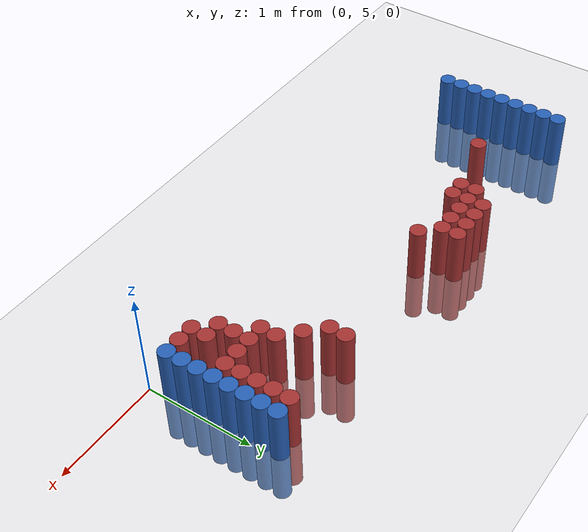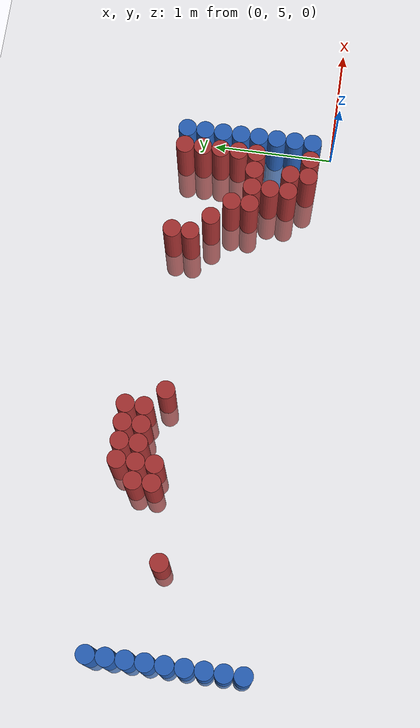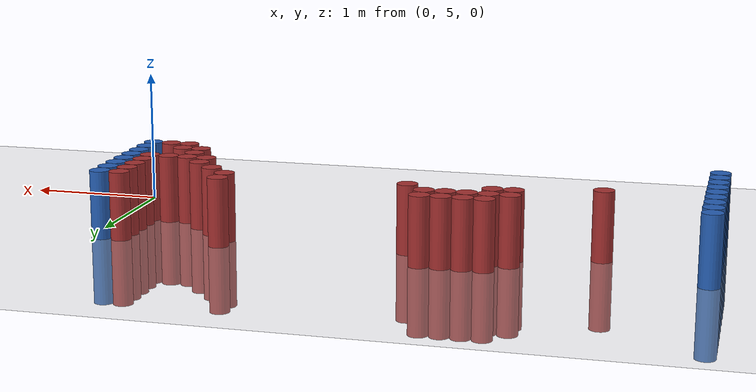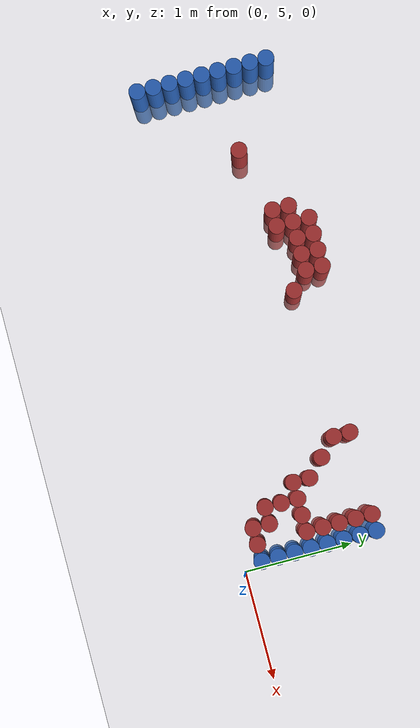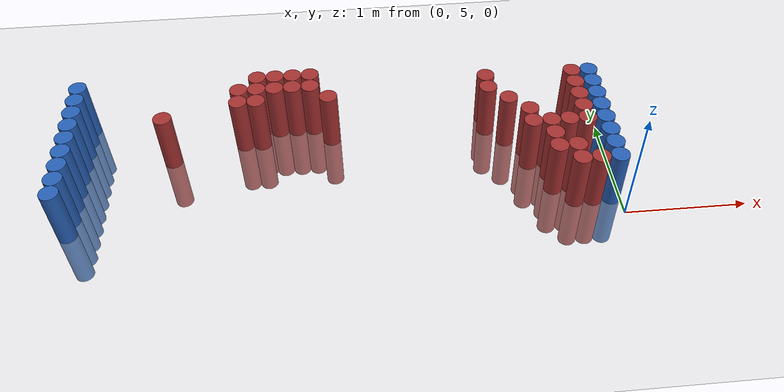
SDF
<sdf version="1.6">
 <world name="default">
  <model name="ground_plane">
   <static>1</static>
   <link name="link">
    <collision name="collision">
     <geometry><plane><normal>0 0 1</normal><size>100 100</size></plane></geometry>
     <surface><friction><ode><mu>100</mu><mu2>50</mu2></ode></friction></surface>
    </collision>
    <visual name="visual">
     <cast_shadows>0</cast_shadows>
     <geometry><plane><normal>0 0 1</normal><size>100 100</size></plane></geometry>
     <material>
      <script><uri>file://media/materials/scripts/gazebo.material</uri><name>Gazebo/Grey</name></script>
     </material>
    </visual>
   </link>
  </model>
  <model name="unit_cylinder_96">
   <static>1</static>
   <pose>-4.425000 5.175000 0.000000 0.000000 0.000000 0.000000</pose>
   <link name="link">
    <inertial>
     <mass>1</mass>
     <inertia><ixx>0.145833</ixx><ixy>0</ixy><ixz>0</ixz><iyy>0.145833</iyy><iyz>0</iyz><izz>0.125</izz></inertia>
    </inertial>
    <collision name="collision">
     <geometry><cylinder><radius>0.075000</radius><length>1</length></cylinder></geometry>
    </collision>
    <visual name="visual">
     <geometry><cylinder><radius>0.075000</radius><length>1</length></cylinder></geometry>
     <material>
      <ambient>0.152000 0.379000 0.720000 1</ambient>
      <diffuse>0.152000 0.379000 0.720000 1</diffuse>
     </material>
     <material>
      <script><name>Gazebo/Grey</name><uri>file://media/materials/scripts/gazebo.material</uri></script>
     </material>
    </visual>
   </link>
  </model>
  <model name="unit_cylinder_97">
   <static>1</static>
   <pose>-4.425000 5.325000 0.000000 0.000000 0.000000 0.000000</pose>
   <link name="link">
    <inertial>
     <mass>1</mass>
     <inertia><ixx>0.145833</ixx><ixy>0</ixy><ixz>0</ixz><iyy>0.145833</iyy><iyz>0</iyz><izz>0.125</izz></inertia>
    </inertial>
    <collision name="collision">
     <geometry><cylinder><radius>0.075000</radius><length>1</length></cylinder></geometry>
    </collision>
    <visual name="visual">
     <geometry><cylinder><radius>0.075000</radius><length>1</length></cylinder></geometry>
     <material>
      <ambient>0.152000 0.379000 0.720000 1</ambient>
      <diffuse>0.152000 0.379000 0.720000 1</diffuse>
     </material>
     <material>
      <script><name>Gazebo/Grey</name><uri>file://media/materials/scripts/gazebo.material</uri></script>
     </material>
    </visual>
   </link>
  </model>
  <model name="unit_cylinder_98">
   <static>1</static>
   <pose>-4.425000 5.475000 0.000000 0.000000 0.000000 0.000000</pose>
   <link name="link">
    <inertial>
     <mass>1</mass>
     <inertia><ixx>0.145833</ixx><ixy>0</ixy><ixz>0</ixz><iyy>0.145833</iyy><iyz>0</iyz><izz>0.125</izz></inertia>
    </inertial>
    <collision name="collision">
     <geometry><cylinder><radius>0.075000</radius><length>1</length></cylinder></geometry>
    </collision>
    <visual name="visual">
     <geometry><cylinder><radius>0.075000</radius><length>1</length></cylinder></geometry>
     <material>
      <ambient>0.152000 0.379000 0.720000 1</ambient>
      <diffuse>0.152000 0.379000 0.720000 1</diffuse>
     </material>
     <material>
      <script><name>Gazebo/Grey</name><uri>file://media/materials/scripts/gazebo.material</uri></script>
     </material>
    </visual>
   </link>
  </model>
  <model name="unit_cylinder_99">
   <static>1</static>
   <pose>-4.425000 5.625000 0.000000 0.000000 0.000000 0.000000</pose>
   <link name="link">
    <inertial>
     <mass>1</mass>
     <inertia><ixx>0.145833</ixx><ixy>0</ixy><ixz>0</ixz><iyy>0.145833</iyy><iyz>0</iyz><izz>0.125</izz></inertia>
    </inertial>
    <collision name="collision">
     <geometry><cylinder><radius>0.075000</radius><length>1</length></cylinder></geometry>
    </collision>
    <visual name="visual">
     <geometry><cylinder><radius>0.075000</radius><length>1</length></cylinder></geometry>
     <material>
      <ambient>0.152000 0.379000 0.720000 1</ambient>
      <diffuse>0.152000 0.379000 0.720000 1</diffuse>
     </material>
     <material>
      <script><name>Gazebo/Grey</name><uri>file://media/materials/scripts/gazebo.material</uri></script>
     </material>
    </visual>
   </link>
  </model>
  <model name="unit_cylinder_100">
   <static>1</static>
   <pose>-4.425000 5.775000 0.000000 0.000000 0.000000 0.000000</pose>
   <link name="link">
    <inertial>
     <mass>1</mass>
     <inertia><ixx>0.145833</ixx><ixy>0</ixy><ixz>0</ixz><iyy>0.145833</iyy><iyz>0</iyz><izz>0.125</izz></inertia>
    </inertial>
    <collision name="collision">
     <geometry><cylinder><radius>0.075000</radius><length>1</length></cylinder></geometry>
    </collision>
    <visual name="visual">
     <geometry><cylinder><radius>0.075000</radius><length>1</length></cylinder></geometry>
     <material>
      <ambient>0.152000 0.379000 0.720000 1</ambient>
      <diffuse>0.152000 0.379000 0.720000 1</diffuse>
     </material>
     <material>
      <script><name>Gazebo/Grey</name><uri>file://media/materials/scripts/gazebo.material</uri></script>
     </material>
    </visual>
   </link>
  </model>
  <model name="unit_cylinder_101">
   <static>1</static>
   <pose>-4.425000 5.925000 0.000000 0.000000 0.000000 0.000000</pose>
   <link name="link">
    <inertial>
     <mass>1</mass>
     <inertia><ixx>0.145833</ixx><ixy>0</ixy><ixz>0</ixz><iyy>0.145833</iyy><iyz>0</iyz><izz>0.125</izz></inertia>
    </inertial>
    <collision name="collision">
     <geometry><cylinder><radius>0.075000</radius><length>1</length></cylinder></geometry>
    </collision>
    <visual name="visual">
     <geometry><cylinder><radius>0.075000</radius><length>1</length></cylinder></geometry>
     <material>
      <ambient>0.152000 0.379000 0.720000 1</ambient>
      <diffuse>0.152000 0.379000 0.720000 1</diffuse>
     </material>
     <material>
      <script><name>Gazebo/Grey</name><uri>file://media/materials/scripts/gazebo.material</uri></script>
     </material>
    </visual>
   </link>
  </model>
  <model name="unit_cylinder_102">
   <static>1</static>
   <pose>-4.425000 6.075000 0.000000 0.000000 0.000000 0.000000</pose>
   <link name="link">
    <inertial>
     <mass>1</mass>
     <inertia><ixx>0.145833</ixx><ixy>0</ixy><ixz>0</ixz><iyy>0.145833</iyy><iyz>0</iyz><izz>0.125</izz></inertia>
    </inertial>
    <collision name="collision">
     <geometry><cylinder><radius>0.075000</radius><length>1</length></cylinder></geometry>
    </collision>
    <visual name="visual">
     <geometry><cylinder><radius>0.075000</radius><length>1</length></cylinder></geometry>
     <material>
      <ambient>0.152000 0.379000 0.720000 1</ambient>
      <diffuse>0.152000 0.379000 0.720000 1</diffuse>
     </material>
     <material>
      <script><name>Gazebo/Grey</name><uri>file://media/materials/scripts/gazebo.material</uri></script>
     </material>
    </visual>
   </link>
  </model>
  <model name="unit_cylinder_103">
   <static>1</static>
   <pose>-4.425000 6.225000 0.000000 0.000000 0.000000 0.000000</pose>
   <link name="link">
    <inertial>
     <mass>1</mass>
     <inertia><ixx>0.145833</ixx><ixy>0</ixy><ixz>0</ixz><iyy>0.145833</iyy><iyz>0</iyz><izz>0.125</izz></inertia>
    </inertial>
    <collision name="collision">
     <geometry><cylinder><radius>0.075000</radius><length>1</length></cylinder></geometry>
    </collision>
    <visual name="visual">
     <geometry><cylinder><radius>0.075000</radius><length>1</length></cylinder></geometry>
     <material>
      <ambient>0.152000 0.379000 0.720000 1</ambient>
      <diffuse>0.152000 0.379000 0.720000 1</diffuse>
     </material>
     <material>
      <script><name>Gazebo/Grey</name><uri>file://media/materials/scripts/gazebo.material</uri></script>
     </material>
    </visual>
   </link>
  </model>
  <model name="unit_cylinder_104">
   <static>1</static>
   <pose>-4.425000 6.375000 0.000000 0.000000 0.000000 0.000000</pose>
   <link name="link">
    <inertial>
     <mass>1</mass>
     <inertia><ixx>0.145833</ixx><ixy>0</ixy><ixz>0</ixz><iyy>0.145833</iyy><iyz>0</iyz><izz>0.125</izz></inertia>
    </inertial>
    <collision name="collision">
     <geometry><cylinder><radius>0.075000</radius><length>1</length></cylinder></geometry>
    </collision>
    <visual name="visual">
     <geometry><cylinder><radius>0.075000</radius><length>1</length></cylinder></geometry>
     <material>
      <ambient>0.152000 0.379000 0.720000 1</ambient>
      <diffuse>0.152000 0.379000 0.720000 1</diffuse>
     </material>
     <material>
      <script><name>Gazebo/Grey</name><uri>file://media/materials/scripts/gazebo.material</uri></script>
     </material>
    </visual>
   </link>
  </model>
  <model name="unit_cylinder_153">
   <static>1</static>
   <pose>-3.675000 5.925000 0.000000 0.000000 0.000000 0.000000</pose>
   <link name="link">
    <inertial>
     <mass>1</mass>
     <inertia><ixx>0.145833</ixx><ixy>0</ixy><ixz>0</ixz><iyy>0.145833</iyy><iyz>0</iyz><izz>0.125</izz></inertia>
    </inertial>
    <collision name="collision">
     <geometry><cylinder><radius>0.075000</radius><length>1</length></cylinder></geometry>
    </collision>
    <visual name="visual">
     <geometry><cylinder><radius>0.075000</radius><length>1</length></cylinder></geometry>
     <material>
      <ambient>0.648000 0.192000 0.192000 1</ambient>
      <diffuse>0.648000 0.192000 0.192000 1</diffuse>
     </material>
     <material>
      <script><name>Gazebo/Grey</name><uri>file://media/materials/scripts/gazebo.material</uri></script>
     </material>
    </visual>
   </link>
  </model>
  <model name="unit_cylinder_165">
   <static>1</static>
   <pose>-3.075000 6.075000 0.000000 0.000000 0.000000 0.000000</pose>
   <link name="link">
    <inertial>
     <mass>1</mass>
     <inertia><ixx>0.145833</ixx><ixy>0</ixy><ixz>0</ixz><iyy>0.145833</iyy><iyz>0</iyz><izz>0.125</izz></inertia>
    </inertial>
    <collision name="collision">
     <geometry><cylinder><radius>0.075000</radius><length>1</length></cylinder></geometry>
    </collision>
    <visual name="visual">
     <geometry><cylinder><radius>0.075000</radius><length>1</length></cylinder></geometry>
     <material>
      <ambient>0.648000 0.192000 0.192000 1</ambient>
      <diffuse>0.648000 0.192000 0.192000 1</diffuse>
     </material>
     <material>
      <script><name>Gazebo/Grey</name><uri>file://media/materials/scripts/gazebo.material</uri></script>
     </material>
    </visual>
   </link>
  </model>
  <model name="unit_cylinder_166">
   <static>1</static>
   <pose>-3.075000 6.225000 0.000000 0.000000 0.000000 0.000000</pose>
   <link name="link">
    <inertial>
     <mass>1</mass>
     <inertia><ixx>0.145833</ixx><ixy>0</ixy><ixz>0</ixz><iyy>0.145833</iyy><iyz>0</iyz><izz>0.125</izz></inertia>
    </inertial>
    <collision name="collision">
     <geometry><cylinder><radius>0.075000</radius><length>1</length></cylinder></geometry>
    </collision>
    <visual name="visual">
     <geometry><cylinder><radius>0.075000</radius><length>1</length></cylinder></geometry>
     <material>
      <ambient>0.648000 0.192000 0.192000 1</ambient>
      <diffuse>0.648000 0.192000 0.192000 1</diffuse>
     </material>
     <material>
      <script><name>Gazebo/Grey</name><uri>file://media/materials/scripts/gazebo.material</uri></script>
     </material>
    </visual>
   </link>
  </model>
  <model name="unit_cylinder_168">
   <static>1</static>
   <pose>-2.925000 6.075000 0.000000 0.000000 0.000000 0.000000</pose>
   <link name="link">
    <inertial>
     <mass>1</mass>
     <inertia><ixx>0.145833</ixx><ixy>0</ixy><ixz>0</ixz><iyy>0.145833</iyy><iyz>0</iyz><izz>0.125</izz></inertia>
    </inertial>
    <collision name="collision">
     <geometry><cylinder><radius>0.075000</radius><length>1</length></cylinder></geometry>
    </collision>
    <visual name="visual">
     <geometry><cylinder><radius>0.075000</radius><length>1</length></cylinder></geometry>
     <material>
      <ambient>0.648000 0.192000 0.192000 1</ambient>
      <diffuse>0.648000 0.192000 0.192000 1</diffuse>
     </material>
     <material>
      <script><name>Gazebo/Grey</name><uri>file://media/materials/scripts/gazebo.material</uri></script>
     </material>
    </visual>
   </link>
  </model>
  <model name="unit_cylinder_169">
   <static>1</static>
   <pose>-2.925000 6.225000 0.000000 0.000000 0.000000 0.000000</pose>
   <link name="link">
    <inertial>
     <mass>1</mass>
     <inertia><ixx>0.145833</ixx><ixy>0</ixy><ixz>0</ixz><iyy>0.145833</iyy><iyz>0</iyz><izz>0.125</izz></inertia>
    </inertial>
    <collision name="collision">
     <geometry><cylinder><radius>0.075000</radius><length>1</length></cylinder></geometry>
    </collision>
    <visual name="visual">
     <geometry><cylinder><radius>0.075000</radius><length>1</length></cylinder></geometry>
     <material>
      <ambient>0.648000 0.192000 0.192000 1</ambient>
      <diffuse>0.648000 0.192000 0.192000 1</diffuse>
     </material>
     <material>
      <script><name>Gazebo/Grey</name><uri>file://media/materials/scripts/gazebo.material</uri></script>
     </material>
    </visual>
   </link>
  </model>
  <model name="unit_cylinder_170">
   <static>1</static>
   <pose>-2.925000 6.375000 0.000000 0.000000 0.000000 0.000000</pose>
   <link name="link">
    <inertial>
     <mass>1</mass>
     <inertia><ixx>0.145833</ixx><ixy>0</ixy><ixz>0</ixz><iyy>0.145833</iyy><iyz>0</iyz><izz>0.125</izz></inertia>
    </inertial>
    <collision name="collision">
     <geometry><cylinder><radius>0.075000</radius><length>1</length></cylinder></geometry>
    </collision>
    <visual name="visual">
     <geometry><cylinder><radius>0.075000</radius><length>1</length></cylinder></geometry>
     <material>
      <ambient>0.648000 0.192000 0.192000 1</ambient>
      <diffuse>0.648000 0.192000 0.192000 1</diffuse>
     </material>
     <material>
      <script><name>Gazebo/Grey</name><uri>file://media/materials/scripts/gazebo.material</uri></script>
     </material>
    </visual>
   </link>
  </model>
  <model name="unit_cylinder_174">
   <static>1</static>
   <pose>-2.775000 6.225000 0.000000 0.000000 0.000000 0.000000</pose>
   <link name="link">
    <inertial>
     <mass>1</mass>
     <inertia><ixx>0.145833</ixx><ixy>0</ixy><ixz>0</ixz><iyy>0.145833</iyy><iyz>0</iyz><izz>0.125</izz></inertia>
    </inertial>
    <collision name="collision">
     <geometry><cylinder><radius>0.075000</radius><length>1</length></cylinder></geometry>
    </collision>
    <visual name="visual">
     <geometry><cylinder><radius>0.075000</radius><length>1</length></cylinder></geometry>
     <material>
      <ambient>0.648000 0.192000 0.192000 1</ambient>
      <diffuse>0.648000 0.192000 0.192000 1</diffuse>
     </material>
     <material>
      <script><name>Gazebo/Grey</name><uri>file://media/materials/scripts/gazebo.material</uri></script>
     </material>
    </visual>
   </link>
  </model>
  <model name="unit_cylinder_175">
   <static>1</static>
   <pose>-2.775000 6.375000 0.000000 0.000000 0.000000 0.000000</pose>
   <link name="link">
    <inertial>
     <mass>1</mass>
     <inertia><ixx>0.145833</ixx><ixy>0</ixy><ixz>0</ixz><iyy>0.145833</iyy><iyz>0</iyz><izz>0.125</izz></inertia>
    </inertial>
    <collision name="collision">
     <geometry><cylinder><radius>0.075000</radius><length>1</length></cylinder></geometry>
    </collision>
    <visual name="visual">
     <geometry><cylinder><radius>0.075000</radius><length>1</length></cylinder></geometry>
     <material>
      <ambient>0.648000 0.192000 0.192000 1</ambient>
      <diffuse>0.648000 0.192000 0.192000 1</diffuse>
     </material>
     <material>
      <script><name>Gazebo/Grey</name><uri>file://media/materials/scripts/gazebo.material</uri></script>
     </material>
    </visual>
   </link>
  </model>
  <model name="unit_cylinder_176">
   <static>1</static>
   <pose>-2.625000 6.225000 0.000000 0.000000 0.000000 0.000000</pose>
   <link name="link">
    <inertial>
     <mass>1</mass>
     <inertia><ixx>0.145833</ixx><ixy>0</ixy><ixz>0</ixz><iyy>0.145833</iyy><iyz>0</iyz><izz>0.125</izz></inertia>
    </inertial>
    <collision name="collision">
     <geometry><cylinder><radius>0.075000</radius><length>1</length></cylinder></geometry>
    </collision>
    <visual name="visual">
     <geometry><cylinder><radius>0.075000</radius><length>1</length></cylinder></geometry>
     <material>
      <ambient>0.648000 0.192000 0.192000 1</ambient>
      <diffuse>0.648000 0.192000 0.192000 1</diffuse>
     </material>
     <material>
      <script><name>Gazebo/Grey</name><uri>file://media/materials/scripts/gazebo.material</uri></script>
     </material>
    </visual>
   </link>
  </model>
  <model name="unit_cylinder_177">
   <static>1</static>
   <pose>-2.625000 6.375000 0.000000 0.000000 0.000000 0.000000</pose>
   <link name="link">
    <inertial>
     <mass>1</mass>
     <inertia><ixx>0.145833</ixx><ixy>0</ixy><ixz>0</ixz><iyy>0.145833</iyy><iyz>0</iyz><izz>0.125</izz></inertia>
    </inertial>
    <collision name="collision">
     <geometry><cylinder><radius>0.075000</radius><length>1</length></cylinder></geometry>
    </collision>
    <visual name="visual">
     <geometry><cylinder><radius>0.075000</radius><length>1</length></cylinder></geometry>
     <material>
      <ambient>0.648000 0.192000 0.192000 1</ambient>
      <diffuse>0.648000 0.192000 0.192000 1</diffuse>
     </material>
     <material>
      <script><name>Gazebo/Grey</name><uri>file://media/materials/scripts/gazebo.material</uri></script>
     </material>
    </visual>
   </link>
  </model>
  <model name="unit_cylinder_179">
   <static>1</static>
   <pose>-2.475000 6.225000 0.000000 0.000000 0.000000 0.000000</pose>
   <link name="link">
    <inertial>
     <mass>1</mass>
     <inertia><ixx>0.145833</ixx><ixy>0</ixy><ixz>0</ixz><iyy>0.145833</iyy><iyz>0</iyz><izz>0.125</izz></inertia>
    </inertial>
    <collision name="collision">
     <geometry><cylinder><radius>0.075000</radius><length>1</length></cylinder></geometry>
    </collision>
    <visual name="visual">
     <geometry><cylinder><radius>0.075000</radius><length>1</length></cylinder></geometry>
     <material>
      <ambient>0.648000 0.192000 0.192000 1</ambient>
      <diffuse>0.648000 0.192000 0.192000 1</diffuse>
     </material>
     <material>
      <script><name>Gazebo/Grey</name><uri>file://media/materials/scripts/gazebo.material</uri></script>
     </material>
    </visual>
   </link>
  </model>
  <model name="unit_cylinder_180">
   <static>1</static>
   <pose>-2.475000 6.375000 0.000000 0.000000 0.000000 0.000000</pose>
   <link name="link">
    <inertial>
     <mass>1</mass>
     <inertia><ixx>0.145833</ixx><ixy>0</ixy><ixz>0</ixz><iyy>0.145833</iyy><iyz>0</iyz><izz>0.125</izz></inertia>
    </inertial>
    <collision name="collision">
     <geometry><cylinder><radius>0.075000</radius><length>1</length></cylinder></geometry>
    </collision>
    <visual name="visual">
     <geometry><cylinder><radius>0.075000</radius><length>1</length></cylinder></geometry>
     <material>
      <ambient>0.648000 0.192000 0.192000 1</ambient>
      <diffuse>0.648000 0.192000 0.192000 1</diffuse>
     </material>
     <material>
      <script><name>Gazebo/Grey</name><uri>file://media/materials/scripts/gazebo.material</uri></script>
     </material>
    </visual>
   </link>
  </model>
  <model name="unit_cylinder_185">
   <static>1</static>
   <pose>-2.325000 6.075000 0.000000 0.000000 0.000000 0.000000</pose>
   <link name="link">
    <inertial>
     <mass>1</mass>
     <inertia><ixx>0.145833</ixx><ixy>0</ixy><ixz>0</ixz><iyy>0.145833</iyy><iyz>0</iyz><izz>0.125</izz></inertia>
    </inertial>
    <collision name="collision">
     <geometry><cylinder><radius>0.075000</radius><length>1</length></cylinder></geometry>
    </collision>
    <visual name="visual">
     <geometry><cylinder><radius>0.075000</radius><length>1</length></cylinder></geometry>
     <material>
      <ambient>0.648000 0.192000 0.192000 1</ambient>
      <diffuse>0.648000 0.192000 0.192000 1</diffuse>
     </material>
     <material>
      <script><name>Gazebo/Grey</name><uri>file://media/materials/scripts/gazebo.material</uri></script>
     </material>
    </visual>
   </link>
  </model>
  <model name="unit_cylinder_213">
   <static>1</static>
   <pose>-0.975000 6.075000 0.000000 0.000000 0.000000 0.000000</pose>
   <link name="link">
    <inertial>
     <mass>1</mass>
     <inertia><ixx>0.145833</ixx><ixy>0</ixy><ixz>0</ixz><iyy>0.145833</iyy><iyz>0</iyz><izz>0.125</izz></inertia>
    </inertial>
    <collision name="collision">
     <geometry><cylinder><radius>0.075000</radius><length>1</length></cylinder></geometry>
    </collision>
    <visual name="visual">
     <geometry><cylinder><radius>0.075000</radius><length>1</length></cylinder></geometry>
     <material>
      <ambient>0.648000 0.192000 0.192000 1</ambient>
      <diffuse>0.648000 0.192000 0.192000 1</diffuse>
     </material>
     <material>
      <script><name>Gazebo/Grey</name><uri>file://media/materials/scripts/gazebo.material</uri></script>
     </material>
    </visual>
   </link>
  </model>
  <model name="unit_cylinder_214">
   <static>1</static>
   <pose>-0.975000 6.225000 0.000000 0.000000 0.000000 0.000000</pose>
   <link name="link">
    <inertial>
     <mass>1</mass>
     <inertia><ixx>0.145833</ixx><ixy>0</ixy><ixz>0</ixz><iyy>0.145833</iyy><iyz>0</iyz><izz>0.125</izz></inertia>
    </inertial>
    <collision name="collision">
     <geometry><cylinder><radius>0.075000</radius><length>1</length></cylinder></geometry>
    </collision>
    <visual name="visual">
     <geometry><cylinder><radius>0.075000</radius><length>1</length></cylinder></geometry>
     <material>
      <ambient>0.648000 0.192000 0.192000 1</ambient>
      <diffuse>0.648000 0.192000 0.192000 1</diffuse>
     </material>
     <material>
      <script><name>Gazebo/Grey</name><uri>file://media/materials/scripts/gazebo.material</uri></script>
     </material>
    </visual>
   </link>
  </model>
  <model name="unit_cylinder_219">
   <static>1</static>
   <pose>-0.825000 5.925000 0.000000 0.000000 0.000000 0.000000</pose>
   <link name="link">
    <inertial>
     <mass>1</mass>
     <inertia><ixx>0.145833</ixx><ixy>0</ixy><ixz>0</ixz><iyy>0.145833</iyy><iyz>0</iyz><izz>0.125</izz></inertia>
    </inertial>
    <collision name="collision">
     <geometry><cylinder><radius>0.075000</radius><length>1</length></cylinder></geometry>
    </collision>
    <visual name="visual">
     <geometry><cylinder><radius>0.075000</radius><length>1</length></cylinder></geometry>
     <material>
      <ambient>0.648000 0.192000 0.192000 1</ambient>
      <diffuse>0.648000 0.192000 0.192000 1</diffuse>
     </material>
     <material>
      <script><name>Gazebo/Grey</name><uri>file://media/materials/scripts/gazebo.material</uri></script>
     </material>
    </visual>
   </link>
  </model>
  <model name="unit_cylinder_223">
   <static>1</static>
   <pose>-0.675000 5.625000 0.000000 0.000000 0.000000 0.000000</pose>
   <link name="link">
    <inertial>
     <mass>1</mass>
     <inertia><ixx>0.145833</ixx><ixy>0</ixy><ixz>0</ixz><iyy>0.145833</iyy><iyz>0</iyz><izz>0.125</izz></inertia>
    </inertial>
    <collision name="collision">
     <geometry><cylinder><radius>0.075000</radius><length>1</length></cylinder></geometry>
    </collision>
    <visual name="visual">
     <geometry><cylinder><radius>0.075000</radius><length>1</length></cylinder></geometry>
     <material>
      <ambient>0.648000 0.192000 0.192000 1</ambient>
      <diffuse>0.648000 0.192000 0.192000 1</diffuse>
     </material>
     <material>
      <script><name>Gazebo/Grey</name><uri>file://media/materials/scripts/gazebo.material</uri></script>
     </material>
    </visual>
   </link>
  </model>
  <model name="unit_cylinder_224">
   <static>1</static>
   <pose>-0.675000 5.775000 0.000000 0.000000 0.000000 0.000000</pose>
   <link name="link">
    <inertial>
     <mass>1</mass>
     <inertia><ixx>0.145833</ixx><ixy>0</ixy><ixz>0</ixz><iyy>0.145833</iyy><iyz>0</iyz><izz>0.125</izz></inertia>
    </inertial>
    <collision name="collision">
     <geometry><cylinder><radius>0.075000</radius><length>1</length></cylinder></geometry>
    </collision>
    <visual name="visual">
     <geometry><cylinder><radius>0.075000</radius><length>1</length></cylinder></geometry>
     <material>
      <ambient>0.648000 0.192000 0.192000 1</ambient>
      <diffuse>0.648000 0.192000 0.192000 1</diffuse>
     </material>
     <material>
      <script><name>Gazebo/Grey</name><uri>file://media/materials/scripts/gazebo.material</uri></script>
     </material>
    </visual>
   </link>
  </model>
  <model name="unit_cylinder_226">
   <static>1</static>
   <pose>-0.525000 5.325000 0.000000 0.000000 0.000000 0.000000</pose>
   <link name="link">
    <inertial>
     <mass>1</mass>
     <inertia><ixx>0.145833</ixx><ixy>0</ixy><ixz>0</ixz><iyy>0.145833</iyy><iyz>0</iyz><izz>0.125</izz></inertia>
    </inertial>
    <collision name="collision">
     <geometry><cylinder><radius>0.075000</radius><length>1</length></cylinder></geometry>
    </collision>
    <visual name="visual">
     <geometry><cylinder><radius>0.075000</radius><length>1</length></cylinder></geometry>
     <material>
      <ambient>0.648000 0.192000 0.192000 1</ambient>
      <diffuse>0.648000 0.192000 0.192000 1</diffuse>
     </material>
     <material>
      <script><name>Gazebo/Grey</name><uri>file://media/materials/scripts/gazebo.material</uri></script>
     </material>
    </visual>
   </link>
  </model>
  <model name="unit_cylinder_227">
   <static>1</static>
   <pose>-0.525000 5.475000 0.000000 0.000000 0.000000 0.000000</pose>
   <link name="link">
    <inertial>
     <mass>1</mass>
     <inertia><ixx>0.145833</ixx><ixy>0</ixy><ixz>0</ixz><iyy>0.145833</iyy><iyz>0</iyz><izz>0.125</izz></inertia>
    </inertial>
    <collision name="collision">
     <geometry><cylinder><radius>0.075000</radius><length>1</length></cylinder></geometry>
    </collision>
    <visual name="visual">
     <geometry><cylinder><radius>0.075000</radius><length>1</length></cylinder></geometry>
     <material>
      <ambient>0.648000 0.192000 0.192000 1</ambient>
      <diffuse>0.648000 0.192000 0.192000 1</diffuse>
     </material>
     <material>
      <script><name>Gazebo/Grey</name><uri>file://media/materials/scripts/gazebo.material</uri></script>
     </material>
    </visual>
   </link>
  </model>
  <model name="unit_cylinder_228">
   <static>1</static>
   <pose>-0.525000 5.625000 0.000000 0.000000 0.000000 0.000000</pose>
   <link name="link">
    <inertial>
     <mass>1</mass>
     <inertia><ixx>0.145833</ixx><ixy>0</ixy><ixz>0</ixz><iyy>0.145833</iyy><iyz>0</iyz><izz>0.125</izz></inertia>
    </inertial>
    <collision name="collision">
     <geometry><cylinder><radius>0.075000</radius><length>1</length></cylinder></geometry>
    </collision>
    <visual name="visual">
     <geometry><cylinder><radius>0.075000</radius><length>1</length></cylinder></geometry>
     <material>
      <ambient>0.648000 0.192000 0.192000 1</ambient>
      <diffuse>0.648000 0.192000 0.192000 1</diffuse>
     </material>
     <material>
      <script><name>Gazebo/Grey</name><uri>file://media/materials/scripts/gazebo.material</uri></script>
     </material>
    </visual>
   </link>
  </model>
  <model name="unit_cylinder_232">
   <static>1</static>
   <pose>-0.375000 5.175000 0.000000 0.000000 0.000000 0.000000</pose>
   <link name="link">
    <inertial>
     <mass>1</mass>
     <inertia><ixx>0.145833</ixx><ixy>0</ixy><ixz>0</ixz><iyy>0.145833</iyy><iyz>0</iyz><izz>0.125</izz></inertia>
    </inertial>
    <collision name="collision">
     <geometry><cylinder><radius>0.075000</radius><length>1</length></cylinder></geometry>
    </collision>
    <visual name="visual">
     <geometry><cylinder><radius>0.075000</radius><length>1</length></cylinder></geometry>
     <material>
      <ambient>0.648000 0.192000 0.192000 1</ambient>
      <diffuse>0.648000 0.192000 0.192000 1</diffuse>
     </material>
     <material>
      <script><name>Gazebo/Grey</name><uri>file://media/materials/scripts/gazebo.material</uri></script>
     </material>
    </visual>
   </link>
  </model>
  <model name="unit_cylinder_233">
   <static>1</static>
   <pose>-0.375000 5.325000 0.000000 0.000000 0.000000 0.000000</pose>
   <link name="link">
    <inertial>
     <mass>1</mass>
     <inertia><ixx>0.145833</ixx><ixy>0</ixy><ixz>0</ixz><iyy>0.145833</iyy><iyz>0</iyz><izz>0.125</izz></inertia>
    </inertial>
    <collision name="collision">
     <geometry><cylinder><radius>0.075000</radius><length>1</length></cylinder></geometry>
    </collision>
    <visual name="visual">
     <geometry><cylinder><radius>0.075000</radius><length>1</length></cylinder></geometry>
     <material>
      <ambient>0.648000 0.192000 0.192000 1</ambient>
      <diffuse>0.648000 0.192000 0.192000 1</diffuse>
     </material>
     <material>
      <script><name>Gazebo/Grey</name><uri>file://media/materials/scripts/gazebo.material</uri></script>
     </material>
    </visual>
   </link>
  </model>
  <model name="unit_cylinder_234">
   <static>1</static>
   <pose>-0.375000 5.625000 0.000000 0.000000 0.000000 0.000000</pose>
   <link name="link">
    <inertial>
     <mass>1</mass>
     <inertia><ixx>0.145833</ixx><ixy>0</ixy><ixz>0</ixz><iyy>0.145833</iyy><iyz>0</iyz><izz>0.125</izz></inertia>
    </inertial>
    <collision name="collision">
     <geometry><cylinder><radius>0.075000</radius><length>1</length></cylinder></geometry>
    </collision>
    <visual name="visual">
     <geometry><cylinder><radius>0.075000</radius><length>1</length></cylinder></geometry>
     <material>
      <ambient>0.648000 0.192000 0.192000 1</ambient>
      <diffuse>0.648000 0.192000 0.192000 1</diffuse>
     </material>
     <material>
      <script><name>Gazebo/Grey</name><uri>file://media/materials/scripts/gazebo.material</uri></script>
     </material>
    </visual>
   </link>
  </model>
  <model name="unit_cylinder_238">
   <static>1</static>
   <pose>-0.225000 5.175000 0.000000 0.000000 0.000000 0.000000</pose>
   <link name="link">
    <inertial>
     <mass>1</mass>
     <inertia><ixx>0.145833</ixx><ixy>0</ixy><ixz>0</ixz><iyy>0.145833</iyy><iyz>0</iyz><izz>0.125</izz></inertia>
    </inertial>
    <collision name="collision">
     <geometry><cylinder><radius>0.075000</radius><length>1</length></cylinder></geometry>
    </collision>
    <visual name="visual">
     <geometry><cylinder><radius>0.075000</radius><length>1</length></cylinder></geometry>
     <material>
      <ambient>0.648000 0.192000 0.192000 1</ambient>
      <diffuse>0.648000 0.192000 0.192000 1</diffuse>
     </material>
     <material>
      <script><name>Gazebo/Grey</name><uri>file://media/materials/scripts/gazebo.material</uri></script>
     </material>
    </visual>
   </link>
  </model>
  <model name="unit_cylinder_239">
   <static>1</static>
   <pose>-0.225000 5.625000 0.000000 0.000000 0.000000 0.000000</pose>
   <link name="link">
    <inertial>
     <mass>1</mass>
     <inertia><ixx>0.145833</ixx><ixy>0</ixy><ixz>0</ixz><iyy>0.145833</iyy><iyz>0</iyz><izz>0.125</izz></inertia>
    </inertial>
    <collision name="collision">
     <geometry><cylinder><radius>0.075000</radius><length>1</length></cylinder></geometry>
    </collision>
    <visual name="visual">
     <geometry><cylinder><radius>0.075000</radius><length>1</length></cylinder></geometry>
     <material>
      <ambient>0.648000 0.192000 0.192000 1</ambient>
      <diffuse>0.648000 0.192000 0.192000 1</diffuse>
     </material>
     <material>
      <script><name>Gazebo/Grey</name><uri>file://media/materials/scripts/gazebo.material</uri></script>
     </material>
    </visual>
   </link>
  </model>
  <model name="unit_cylinder_240">
   <static>1</static>
   <pose>-0.225000 5.775000 0.000000 0.000000 0.000000 0.000000</pose>
   <link name="link">
    <inertial>
     <mass>1</mass>
     <inertia><ixx>0.145833</ixx><ixy>0</ixy><ixz>0</ixz><iyy>0.145833</iyy><iyz>0</iyz><izz>0.125</izz></inertia>
    </inertial>
    <collision name="collision">
     <geometry><cylinder><radius>0.075000</radius><length>1</length></cylinder></geometry>
    </collision>
    <visual name="visual">
     <geometry><cylinder><radius>0.075000</radius><length>1</length></cylinder></geometry>
     <material>
      <ambient>0.648000 0.192000 0.192000 1</ambient>
      <diffuse>0.648000 0.192000 0.192000 1</diffuse>
     </material>
     <material>
      <script><name>Gazebo/Grey</name><uri>file://media/materials/scripts/gazebo.material</uri></script>
     </material>
    </visual>
   </link>
  </model>
  <model name="unit_cylinder_241">
   <static>1</static>
   <pose>-0.225000 5.925000 0.000000 0.000000 0.000000 0.000000</pose>
   <link name="link">
    <inertial>
     <mass>1</mass>
     <inertia><ixx>0.145833</ixx><ixy>0</ixy><ixz>0</ixz><iyy>0.145833</iyy><iyz>0</iyz><izz>0.125</izz></inertia>
    </inertial>
    <collision name="collision">
     <geometry><cylinder><radius>0.075000</radius><length>1</length></cylinder></geometry>
    </collision>
    <visual name="visual">
     <geometry><cylinder><radius>0.075000</radius><length>1</length></cylinder></geometry>
     <material>
      <ambient>0.648000 0.192000 0.192000 1</ambient>
      <diffuse>0.648000 0.192000 0.192000 1</diffuse>
     </material>
     <material>
      <script><name>Gazebo/Grey</name><uri>file://media/materials/scripts/gazebo.material</uri></script>
     </material>
    </visual>
   </link>
  </model>
  <model name="unit_cylinder_242">
   <static>1</static>
   <pose>-0.225000 6.075000 0.000000 0.000000 0.000000 0.000000</pose>
   <link name="link">
    <inertial>
     <mass>1</mass>
     <inertia><ixx>0.145833</ixx><ixy>0</ixy><ixz>0</ixz><iyy>0.145833</iyy><iyz>0</iyz><izz>0.125</izz></inertia>
    </inertial>
    <collision name="collision">
     <geometry><cylinder><radius>0.075000</radius><length>1</length></cylinder></geometry>
    </collision>
    <visual name="visual">
     <geometry><cylinder><radius>0.075000</radius><length>1</length></cylinder></geometry>
     <material>
      <ambient>0.648000 0.192000 0.192000 1</ambient>
      <diffuse>0.648000 0.192000 0.192000 1</diffuse>
     </material>
     <material>
      <script><name>Gazebo/Grey</name><uri>file://media/materials/scripts/gazebo.material</uri></script>
     </material>
    </visual>
   </link>
  </model>
  <model name="unit_cylinder_243">
   <static>1</static>
   <pose>-0.225000 6.225000 0.000000 0.000000 0.000000 0.000000</pose>
   <link name="link">
    <inertial>
     <mass>1</mass>
     <inertia><ixx>0.145833</ixx><ixy>0</ixy><ixz>0</ixz><iyy>0.145833</iyy><iyz>0</iyz><izz>0.125</izz></inertia>
    </inertial>
    <collision name="collision">
     <geometry><cylinder><radius>0.075000</radius><length>1</length></cylinder></geometry>
    </collision>
    <visual name="visual">
     <geometry><cylinder><radius>0.075000</radius><length>1</length></cylinder></geometry>
     <material>
      <ambient>0.648000 0.192000 0.192000 1</ambient>
      <diffuse>0.648000 0.192000 0.192000 1</diffuse>
     </material>
     <material>
      <script><name>Gazebo/Grey</name><uri>file://media/materials/scripts/gazebo.material</uri></script>
     </material>
    </visual>
   </link>
  </model>
  <model name="unit_cylinder_255">
   <static>1</static>
   <pose>-0.075000 5.175000 0.000000 0.000000 0.000000 0.000000</pose>
   <link name="link">
    <inertial>
     <mass>1</mass>
     <inertia><ixx>0.145833</ixx><ixy>0</ixy><ixz>0</ixz><iyy>0.145833</iyy><iyz>0</iyz><izz>0.125</izz></inertia>
    </inertial>
    <collision name="collision">
     <geometry><cylinder><radius>0.075000</radius><length>1</length></cylinder></geometry>
    </collision>
    <visual name="visual">
     <geometry><cylinder><radius>0.075000</radius><length>1</length></cylinder></geometry>
     <material>
      <ambient>0.152000 0.379000 0.720000 1</ambient>
      <diffuse>0.152000 0.379000 0.720000 1</diffuse>
     </material>
     <material>
      <script><name>Gazebo/Grey</name><uri>file://media/materials/scripts/gazebo.material</uri></script>
     </material>
    </visual>
   </link>
  </model>
  <model name="unit_cylinder_256">
   <static>1</static>
   <pose>-0.075000 5.325000 0.000000 0.000000 0.000000 0.000000</pose>
   <link name="link">
    <inertial>
     <mass>1</mass>
     <inertia><ixx>0.145833</ixx><ixy>0</ixy><ixz>0</ixz><iyy>0.145833</iyy><iyz>0</iyz><izz>0.125</izz></inertia>
    </inertial>
    <collision name="collision">
     <geometry><cylinder><radius>0.075000</radius><length>1</length></cylinder></geometry>
    </collision>
    <visual name="visual">
     <geometry><cylinder><radius>0.075000</radius><length>1</length></cylinder></geometry>
     <material>
      <ambient>0.152000 0.379000 0.720000 1</ambient>
      <diffuse>0.152000 0.379000 0.720000 1</diffuse>
     </material>
     <material>
      <script><name>Gazebo/Grey</name><uri>file://media/materials/scripts/gazebo.material</uri></script>
     </material>
    </visual>
   </link>
  </model>
  <model name="unit_cylinder_257">
   <static>1</static>
   <pose>-0.075000 5.475000 0.000000 0.000000 0.000000 0.000000</pose>
   <link name="link">
    <inertial>
     <mass>1</mass>
     <inertia><ixx>0.145833</ixx><ixy>0</ixy><ixz>0</ixz><iyy>0.145833</iyy><iyz>0</iyz><izz>0.125</izz></inertia>
    </inertial>
    <collision name="collision">
     <geometry><cylinder><radius>0.075000</radius><length>1</length></cylinder></geometry>
    </collision>
    <visual name="visual">
     <geometry><cylinder><radius>0.075000</radius><length>1</length></cylinder></geometry>
     <material>
      <ambient>0.152000 0.379000 0.720000 1</ambient>
      <diffuse>0.152000 0.379000 0.720000 1</diffuse>
     </material>
     <material>
      <script><name>Gazebo/Grey</name><uri>file://media/materials/scripts/gazebo.material</uri></script>
     </material>
    </visual>
   </link>
  </model>
  <model name="unit_cylinder_258">
   <static>1</static>
   <pose>-0.075000 5.625000 0.000000 0.000000 0.000000 0.000000</pose>
   <link name="link">
    <inertial>
     <mass>1</mass>
     <inertia><ixx>0.145833</ixx><ixy>0</ixy><ixz>0</ixz><iyy>0.145833</iyy><iyz>0</iyz><izz>0.125</izz></inertia>
    </inertial>
    <collision name="collision">
     <geometry><cylinder><radius>0.075000</radius><length>1</length></cylinder></geometry>
    </collision>
    <visual name="visual">
     <geometry><cylinder><radius>0.075000</radius><length>1</length></cylinder></geometry>
     <material>
      <ambient>0.152000 0.379000 0.720000 1</ambient>
      <diffuse>0.152000 0.379000 0.720000 1</diffuse>
     </material>
     <material>
      <script><name>Gazebo/Grey</name><uri>file://media/materials/scripts/gazebo.material</uri></script>
     </material>
    </visual>
   </link>
  </model>
  <model name="unit_cylinder_259">
   <static>1</static>
   <pose>-0.075000 5.775000 0.000000 0.000000 0.000000 0.000000</pose>
   <link name="link">
    <inertial>
     <mass>1</mass>
     <inertia><ixx>0.145833</ixx><ixy>0</ixy><ixz>0</ixz><iyy>0.145833</iyy><iyz>0</iyz><izz>0.125</izz></inertia>
    </inertial>
    <collision name="collision">
     <geometry><cylinder><radius>0.075000</radius><length>1</length></cylinder></geometry>
    </collision>
    <visual name="visual">
     <geometry><cylinder><radius>0.075000</radius><length>1</length></cylinder></geometry>
     <material>
      <ambient>0.152000 0.379000 0.720000 1</ambient>
      <diffuse>0.152000 0.379000 0.720000 1</diffuse>
     </material>
     <material>
      <script><name>Gazebo/Grey</name><uri>file://media/materials/scripts/gazebo.material</uri></script>
     </material>
    </visual>
   </link>
  </model>
  <model name="unit_cylinder_260">
   <static>1</static>
   <pose>-0.075000 5.925000 0.000000 0.000000 0.000000 0.000000</pose>
   <link name="link">
    <inertial>
     <mass>1</mass>
     <inertia><ixx>0.145833</ixx><ixy>0</ixy><ixz>0</ixz><iyy>0.145833</iyy><iyz>0</iyz><izz>0.125</izz></inertia>
    </inertial>
    <collision name="collision">
     <geometry><cylinder><radius>0.075000</radius><length>1</length></cylinder></geometry>
    </collision>
    <visual name="visual">
     <geometry><cylinder><radius>0.075000</radius><length>1</length></cylinder></geometry>
     <material>
      <ambient>0.152000 0.379000 0.720000 1</ambient>
      <diffuse>0.152000 0.379000 0.720000 1</diffuse>
     </material>
     <material>
      <script><name>Gazebo/Grey</name><uri>file://media/materials/scripts/gazebo.material</uri></script>
     </material>
    </visual>
   </link>
  </model>
  <model name="unit_cylinder_261">
   <static>1</static>
   <pose>-0.075000 6.075000 0.000000 0.000000 0.000000 0.000000</pose>
   <link name="link">
    <inertial>
     <mass>1</mass>
     <inertia><ixx>0.145833</ixx><ixy>0</ixy><ixz>0</ixz><iyy>0.145833</iyy><iyz>0</iyz><izz>0.125</izz></inertia>
    </inertial>
    <collision name="collision">
     <geometry><cylinder><radius>0.075000</radius><length>1</length></cylinder></geometry>
    </collision>
    <visual name="visual">
     <geometry><cylinder><radius>0.075000</radius><length>1</length></cylinder></geometry>
     <material>
      <ambient>0.152000 0.379000 0.720000 1</ambient>
      <diffuse>0.152000 0.379000 0.720000 1</diffuse>
     </material>
     <material>
      <script><name>Gazebo/Grey</name><uri>file://media/materials/scripts/gazebo.material</uri></script>
     </material>
    </visual>
   </link>
  </model>
  <model name="unit_cylinder_262">
   <static>1</static>
   <pose>-0.075000 6.225000 0.000000 0.000000 0.000000 0.000000</pose>
   <link name="link">
    <inertial>
     <mass>1</mass>
     <inertia><ixx>0.145833</ixx><ixy>0</ixy><ixz>0</ixz><iyy>0.145833</iyy><iyz>0</iyz><izz>0.125</izz></inertia>
    </inertial>
    <collision name="collision">
     <geometry><cylinder><radius>0.075000</radius><length>1</length></cylinder></geometry>
    </collision>
    <visual name="visual">
     <geometry><cylinder><radius>0.075000</radius><length>1</length></cylinder></geometry>
     <material>
      <ambient>0.152000 0.379000 0.720000 1</ambient>
      <diffuse>0.152000 0.379000 0.720000 1</diffuse>
     </material>
     <material>
      <script><name>Gazebo/Grey</name><uri>file://media/materials/scripts/gazebo.material</uri></script>
     </material>
    </visual>
   </link>
  </model>
 </world>
</sdf>
